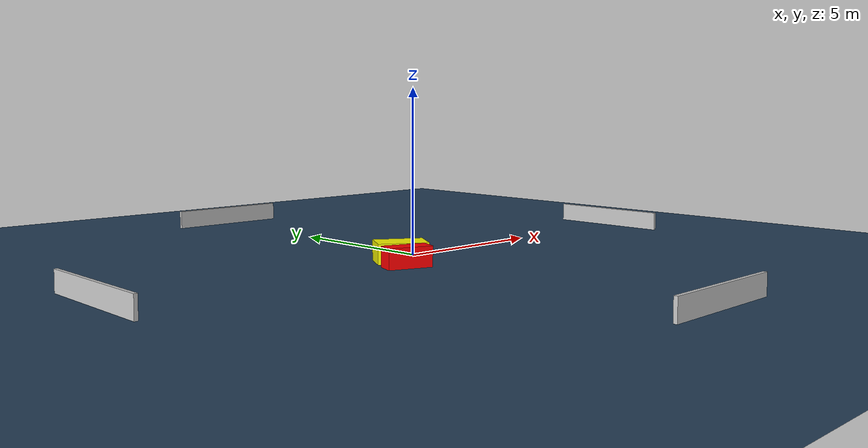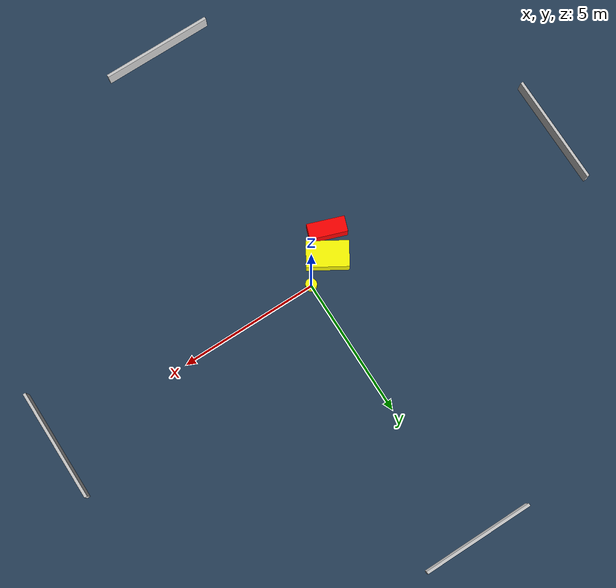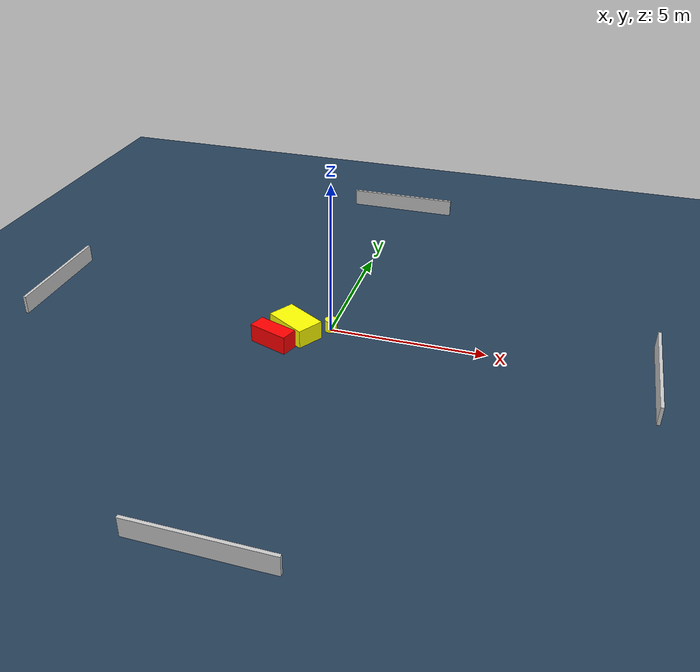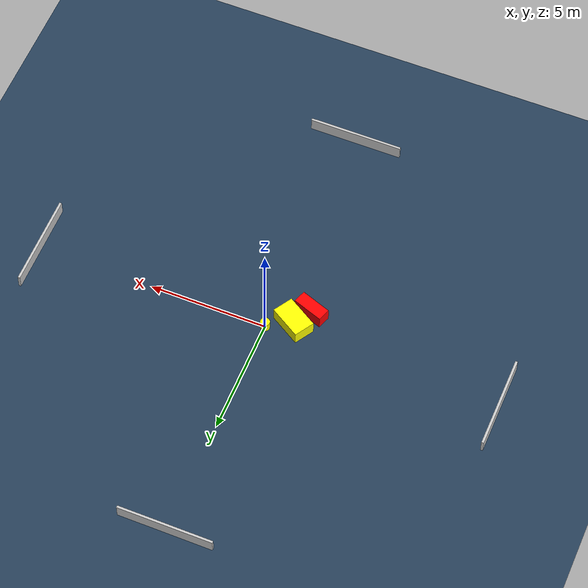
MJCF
<?xml version="1.0" ?>
<mujoco model="generated_environment">
  <option timestep="0.01" integrator="RK4" cone="elliptic"/>
  <default>
    <geom density="1"/>
  </default>
  <asset>
    <texture builtin="gradient" height="3072" name="skybox" rgb1="0.3 0.5 0.7" rgb2="0 0 0" type="skybox" width="512"/>
    <texture builtin="checker" height="300" name="groundplane" rgb1="0.2 0.3 0.4" rgb2="0.1 0.2 0.3" type="2d" width="300"/>
    <material name="groundplane" reflectance="0.2" texrepeat="5 5" texture="groundplane"/>
  </asset>
  <worldbody>
    <light dir="0 0 -1" directional="true" pos="0 0 1.5"/>
    <geom condim="3" friction="0.5 0.005 0.001" material="groundplane" name="floor" pos="0 0 0" size="0 0 0.05" type="plane"/>
    <body name="walls">
      <geom name="wall_1" condim="4" pos="-10.0 0.0 0.3" rgba="0.800000011920929 0.800000011920929 0.800000011920929 1.0" size="0.05 2.0 0.3" type="box"/>
      <geom name="wall_2" condim="4" pos="10.0 0.0 0.3" rgba="0.800000011920929 0.800000011920929 0.800000011920929 1.0" size="0.05 2.0 0.3" type="box"/>
      <geom name="wall_3" condim="4" pos="0.0 -10.0 0.3" rgba="0.800000011920929 0.800000011920929 0.800000011920929 1.0" size="2.0 0.05 0.3" type="box"/>
      <geom name="wall_4" condim="4" pos="0.0 10.0 0.3" rgba="0.800000011920929 0.800000011920929 0.800000011920929 1.0" size="2.0 0.05 0.3" type="box"/>
    </body>
    <body name="robot">
      <joint name="joint_x" type="slide" pos="0 0 0" axis="1 0 0"/>
      <joint name="joint_y" type="slide" pos="0 0 0" axis="0 1 0"/>
      <geom name="robot" type="cylinder" pos="0.0 0.0 0.2" size="0.2 0.2 0.0" mass="5.0" friction="1.0 0.005 0.0001" condim="4" rgba="1.0 1.0 0.0 1.0"/>
    </body>
    <body name="obstacle_1_movable">
      <geom name="obstacle_1_movable" condim="4" pos="-1.0110928628794649 -0.5442204266285693 0.3" euler="0 0 328.830617604326" friction="0.0 0.005 0.001" rgba="1.0 1.0 0.0 1.0" size="0.7382646882249664 0.4545970691851551 0.3" type="box" mass="0.1"/>
      <joint type="free"/>
    </body>
    <body name="obstacle_2_static">
      <geom name="obstacle_2_static" condim="4" pos="-1.488868847620788 -1.3148245607557432 0.3" euler="0 0 160.46532740885766" friction="0.0 0.005 0.001" rgba="1.0 0.0 0.0 1.0" size="0.6649201111812757 0.2761394790392554 0.3" type="box"/>
    </body>
  </worldbody>
  <actuator>
    <motor name="actuator_x" joint="joint_x" gear="1" ctrlrange="-1 1"/>
    <motor name="actuator_y" joint="joint_y" gear="1" ctrlrange="-1 1"/>
  </actuator>
</mujoco>
